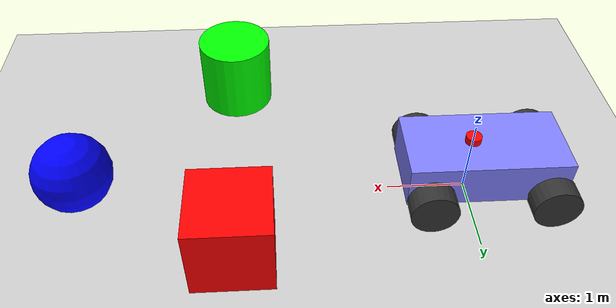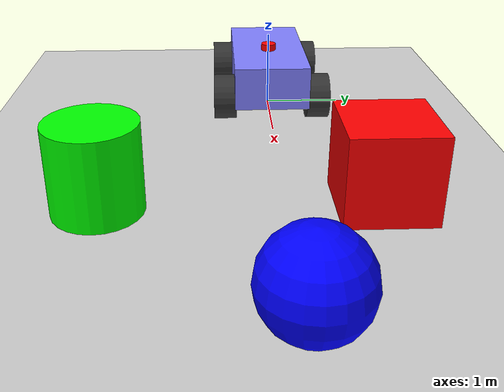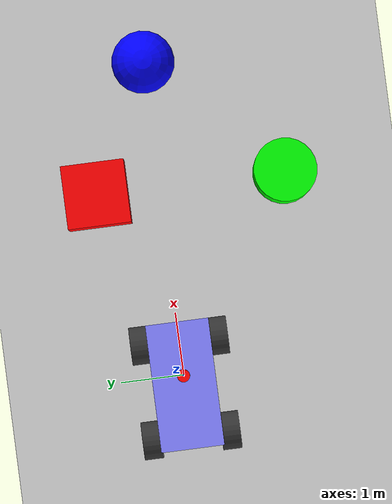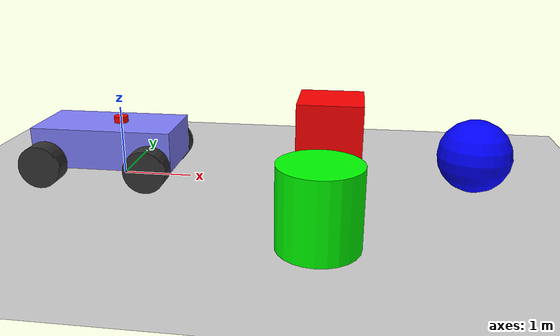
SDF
<?xml version="1.0" ?>
<sdf version="1.8">
    <world name="car_world">
        <physics name="1ms" type="ignored">
            <max_step_size>0.001</max_step_size>
            <real_time_factor>1.0</real_time_factor>
        </physics>
        <plugin filename="gz-sim-physics-system" name="gz::sim::systems::Physics"></plugin>
        <plugin filename="gz-sim-user-commands-system" name="gz::sim::systems::UserCommands"></plugin>
        <plugin filename="gz-sim-scene-broadcaster-system" name="gz::sim::systems::SceneBroadcaster"></plugin>
        <plugin filename="gz-sim-sensors-system" name="gz::sim::systems::Sensors">
            <render_engine>ogre2</render_engine>
        </plugin>

        <plugin filename="gz-sim-triggered-publisher-system" name="gz::sim::systems::TriggeredPublisher">
            <input type="gz.msgs.Int32" topic="/keyboard/keypress">
                <match field="data">16777235</match>
            </input>
            <output type="gz.msgs.Twist" topic="/cmd_vel">
                linear { x: 0.5 } angular { z: 0.0 }
            </output>
        </plugin>

        <plugin filename="gz-sim-triggered-publisher-system" name="gz::sim::systems::TriggeredPublisher">
            <input type="gz.msgs.Int32" topic="/keyboard/keypress">
                <match field="data">16777237</match>
            </input>
            <output type="gz.msgs.Twist" topic="/cmd_vel">
                linear { x: -0.5 } angular { z: 0.0 }
            </output>
        </plugin>

        <plugin filename="gz-sim-triggered-publisher-system" name="gz::sim::systems::TriggeredPublisher">
            <input type="gz.msgs.Int32" topic="/keyboard/keypress">
                <match field="data">16777234</match>
            </input>
            <output type="gz.msgs.Twist" topic="/cmd_vel">
                linear { x: 0.3 } angular { z: 0.5 }
            </output>
        </plugin>

        <plugin filename="gz-sim-triggered-publisher-system" name="gz::sim::systems::TriggeredPublisher">
            <input type="gz.msgs.Int32" topic="/keyboard/keypress">
                <match field="data">16777236</match>
            </input>
            <output type="gz.msgs.Twist" topic="/cmd_vel">
                linear { x: 0.3 } angular { z: -0.5 }
            </output>
        </plugin>
        <plugin filename="gz-sim-triggered-publisher-system" name="gz::sim::systems::TriggeredPublisher">
            <input type="gz.msgs.Int32" topic="/keyboard/keypress">
                <match field="data">32</match>
            </input>
            <output type="gz.msgs.Twist" topic="/cmd_vel">
                linear { x: 0.0 } angular { z: 0.0 }
            </output>
        </plugin>

        <light type="directional" name="sun">
            <cast_shadows>true</cast_shadows>
            <pose>0 0 10 0 0 0</pose>
            <diffuse>0.8 0.8 0.8 1</diffuse>
            <specular>0.2 0.2 0.2 1</specular>
            <attenuation>
                <range>1000</range>
                <constant>0.9</constant>
                <linear>0.01</linear>
                <quadratic>0.001</quadratic>
            </attenuation>
            <direction>-0.5 0.1 -0.9</direction>
        </light>

        <model name="ground_plane">
            <static>true</static>
            <link name="link">
                <collision name="collision">
                    <geometry><plane><normal>0 0 1</normal><size>100 100</size></plane></geometry>
                </collision>
                <visual name="visual">
                    <geometry><plane><normal>0 0 1</normal><size>100 100</size></plane></geometry>
                    <material><ambient>0.8 0.8 0.8 1</ambient><diffuse>0.8 0.8 0.8 1</diffuse><specular>0.8 0.8 0.8 1</specular></material>
                </visual>
            </link>
        </model>

        <model name='box_obstacle'>
            <pose>3 1 0.5 0 0 0</pose>
            <link name='box_link'>
                <visual name='visual'><geometry><box><size>1 1 1</size></box></geometry><material><ambient>1 0 0 1</ambient><diffuse>1 0 0 1</diffuse></material></visual>
                <collision name='collision'><geometry><box><size>1 1 1</size></box></geometry></collision>
            </link>
        </model>

        <model name='cylinder_obstacle'>
            <pose>3 -2 0.5 0 0 0</pose>
            <link name='cyl_link'>
                <visual name='visual'><geometry><cylinder><radius>0.5</radius><length>1</length></cylinder></geometry><material><ambient>0 1 0 1</ambient><diffuse>0 1 0 1</diffuse></material></visual>
                <collision name='collision'><geometry><cylinder><radius>0.5</radius><length>1</length></cylinder></geometry></collision>
            </link>
        </model>

         <model name='sphere_obstacle'>
            <pose>5 0 0.5 0 0 0</pose>
            <link name='sphere_link'>
                <visual name='visual'><geometry><sphere><radius>0.5</radius></sphere></geometry><material><ambient>0 0 1 1</ambient><diffuse>0 0 1 1</diffuse></material></visual>
                <collision name='collision'><geometry><sphere><radius>0.5</radius></sphere></geometry></collision>
            </link>
        </model>

        <model name="vehicle_blue">
            <pose>0 0 0.325 0 0 0</pose>
            <link name="chassis">
                <pose>-0.151427 -0 0.175 0 -0 0</pose>
                <inertial>
                    <mass>1.14395</mass>
                    <inertia><ixx>0.126164</ixx><iyy>0.416519</iyy><izz>0.481014</izz></inertia>
                </inertial>
                <visual name="visual">
                    <geometry><box><size>2.01142 1 0.568726</size></box></geometry>
                    <material><ambient>0.5 0.5 1.0 1</ambient><diffuse>0.5 0.5 1.0 1</diffuse></material>
                </visual>
                <collision name="collision"><geometry><box><size>2.01142 1 0.568726</size></box></geometry></collision>
            </link>

            <link name="left_rear_wheel">
                <pose>0.554283 0.625029 -0.025 -1.5707 0 0</pose>
                <inertial><mass>2</mass><inertia><ixx>0.145833</ixx><iyy>0.145833</iyy><izz>0.125</izz></inertia></inertial>
                <visual name="visual"><geometry><cylinder><length>0.3</length><radius>0.3</radius></cylinder></geometry><material><ambient>0.2 0.2 0.2 1</ambient><diffuse>0.2 0.2 0.2 1</diffuse></material></visual>
                <collision name="collision"><geometry><cylinder><length>0.3</length><radius>0.3</radius></cylinder></geometry></collision>
            </link>

            <link name="right_rear_wheel">
                <pose>0.554282 -0.625029 -0.025 -1.5707 0 0</pose>
                <inertial><mass>2</mass><inertia><ixx>0.145833</ixx><iyy>0.145833</iyy><izz>0.125</izz></inertia></inertial>
                <visual name="visual"><geometry><cylinder><length>0.3</length><radius>0.3</radius></cylinder></geometry><material><ambient>0.2 0.2 0.2 1</ambient><diffuse>0.2 0.2 0.2 1</diffuse></material></visual>
                <collision name="collision"><geometry><cylinder><length>0.3</length><radius>0.3</radius></cylinder></geometry></collision>
            </link>

            <link name="left_front_wheel">
                <pose>-0.957138 0.625029 -0.025 -1.5707 0 0</pose>
                <inertial><mass>2</mass><inertia><ixx>0.145833</ixx><iyy>0.145833</iyy><izz>0.125</izz></inertia></inertial>
                <visual name="visual"><geometry><cylinder><length>0.3</length><radius>0.3</radius></cylinder></geometry><material><ambient>0.2 0.2 0.2 1</ambient><diffuse>0.2 0.2 0.2 1</diffuse></material></visual>
                <collision name="collision"><geometry><cylinder><length>0.3</length><radius>0.3</radius></cylinder></geometry></collision>
            </link>

            <link name="right_front_wheel">
                <pose>-0.957138 -0.625029 -0.025 -1.5707 0 0</pose>
                <inertial><mass>2</mass><inertia><ixx>0.145833</ixx><iyy>0.145833</iyy><izz>0.125</izz></inertia></inertial>
                <visual name="visual"><geometry><cylinder><length>0.3</length><radius>0.3</radius></cylinder></geometry><material><ambient>0.2 0.2 0.2 1</ambient><diffuse>0.2 0.2 0.2 1</diffuse></material></visual>
                <collision name="collision"><geometry><cylinder><length>0.3</length><radius>0.3</radius></cylinder></geometry></collision>
            </link>

            <link name="lidar_link">
                <pose>0 0 0.5 0 0 0</pose>
                <inertial><mass>0.1</mass><inertia><ixx>0.000166667</ixx><iyy>0.000166667</iyy><izz>0.000166667</izz></inertia></inertial>
                <visual name="visual"><geometry><cylinder><radius>0.1</radius><length>0.1</length></cylinder></geometry><material><ambient>1.0 0.0 0.0 1</ambient><diffuse>1.0 0.0 0.0 1</diffuse></material></visual>
                <collision name="collision"><geometry><cylinder><radius>0.1</radius><length>0.1</length></cylinder></geometry></collision>
                <sensor name='gpu_lidar' type='gpu_lidar'>
                    <pose>0 0 0 0 0 0</pose>
                    <topic>lidar</topic>
                    <update_rate>10</update_rate>
                    <ray>
                        <scan>
                            <horizontal><samples>640</samples><resolution>1</resolution><min_angle>-1.396263</min_angle><max_angle>1.396263</max_angle></horizontal>
                        </scan>
                        <range><min>0.08</min><max>10.0</max></range>
                    </ray>
                    <visualize>true</visualize>
                </sensor>
            </link>

            <joint name='left_rear_wheel_joint' type='revolute'>
                <parent>chassis</parent><child>left_rear_wheel</child><axis><xyz>0 0 1</xyz></axis>
            </joint>
            <joint name='right_rear_wheel_joint' type='revolute'>
                <parent>chassis</parent><child>right_rear_wheel</child><axis><xyz>0 0 1</xyz></axis>
            </joint>
            <joint name='left_front_wheel_joint' type='revolute'>
                <parent>chassis</parent><child>left_front_wheel</child><axis><xyz>0 0 1</xyz></axis>
            </joint>
            <joint name='right_front_wheel_joint' type='revolute'>
                <parent>chassis</parent><child>right_front_wheel</child><axis><xyz>0 0 1</xyz></axis>
            </joint>
            <joint name='lidar_joint' type='fixed'>
                <parent>chassis</parent><child>lidar_link</child>
            </joint>

            <plugin filename="gz-sim-diff-drive-system" name="gz::sim::systems::DiffDrive">
                <left_joint>left_front_wheel_joint</left_joint>
                <left_joint>left_rear_wheel_joint</left_joint>
                <right_joint>right_front_wheel_joint</right_joint>
                <right_joint>right_rear_wheel_joint</right_joint>
                <wheel_separation>1.25</wheel_separation>
                <wheel_radius>0.3</wheel_radius>
                <odom_publish_frequency>1</odom_publish_frequency>
                <topic>/cmd_vel</topic>
            </plugin>
        </model>
    </world>
</sdf>
